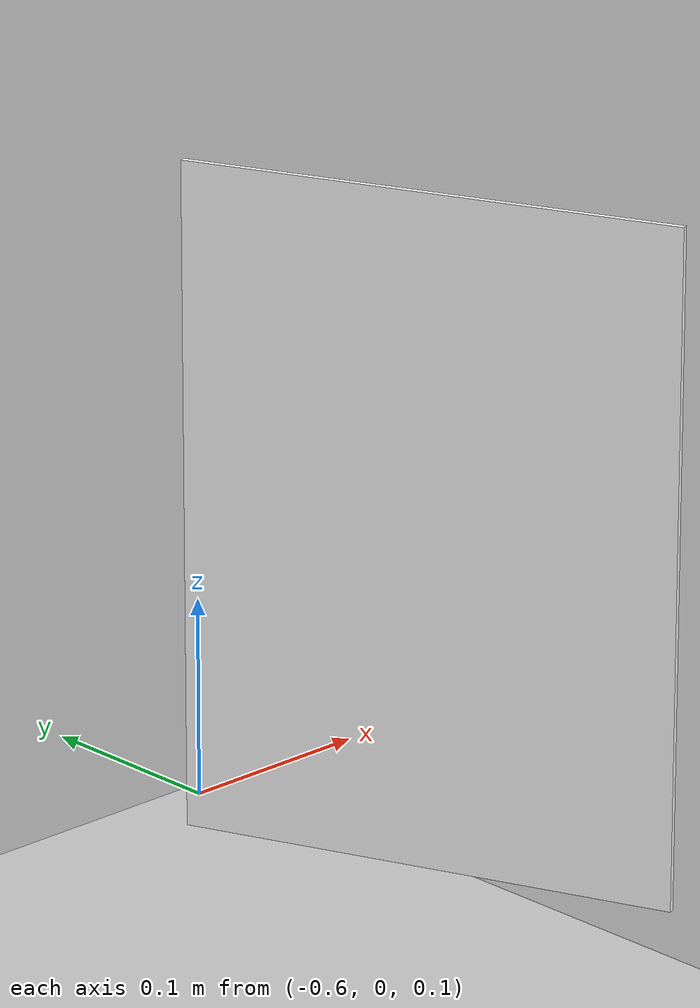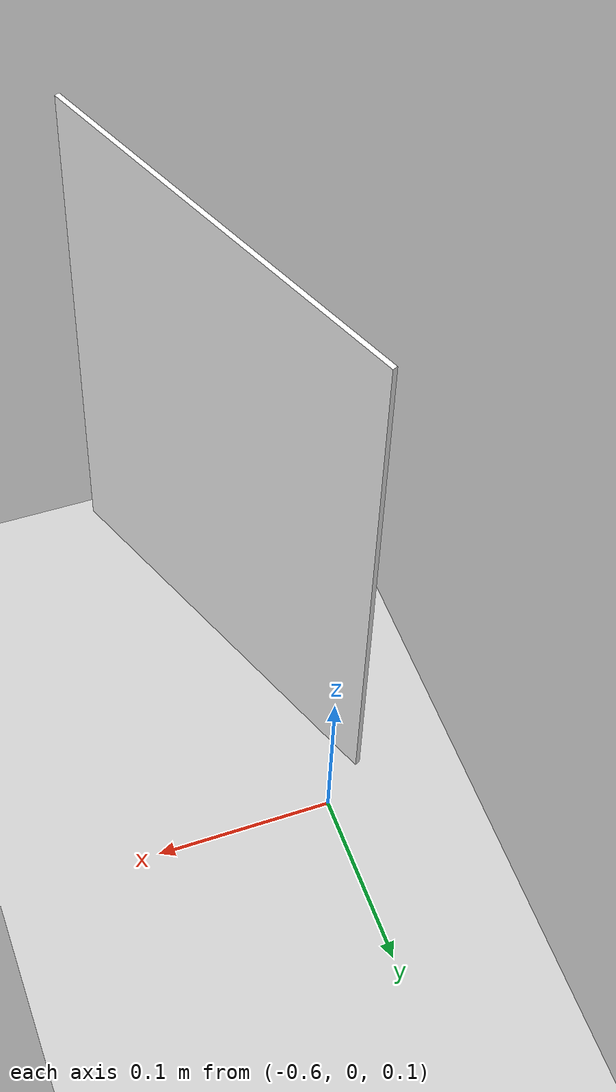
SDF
<?xml version="1.0" ?>
<sdf version="1.9">
  <world name="robot_arm_test_world">

    <physics name="2ms" type="ignored">
      <max_step_size>0.002</max_step_size>
      <real_time_factor>0</real_time_factor>
      <real_time_update_rate>0</real_time_update_rate>
    </physics>

    <plugin filename="gz-sim-physics-system" name="gz::sim::systems::Physics"/>
    <plugin filename="gz-sim-user-commands-system" name="gz::sim::systems::UserCommands"/>
    <plugin filename="gz-sim-scene-broadcaster-system" name="gz::sim::systems::SceneBroadcaster"/>
    <plugin filename="gz-sim-sensors-system" name="gz::sim::systems::Sensors">
      <render_engine>ogre2</render_engine>
    </plugin>

    <scene>
      <ambient>0.7 0.7 0.7 1</ambient>
      <background>0.5 0.5 0.5</background>
    </scene>

    <light type="directional" name="sun">
      <cast_shadows>true</cast_shadows>
      <pose>0 0 10 0 0 0</pose>
      <diffuse>0.8 0.8 0.8 1</diffuse>
    </light>

    <model name="ground_plane">
      <static>true</static>
      <link name="link">
        <collision name="collision">
          <geometry><plane><normal>0 0 1</normal></plane></geometry>
        </collision>
        <visual name="visual">
          <geometry><plane><normal>0 0 1</normal><size>20 20</size></plane></geometry>
          <material><ambient>0.8 0.8 0.8 1</ambient></material>
        </visual>
      </link>
    </model>

    <!-- Sabit gözlem kamerası: kol ~30cm, origin'e bakar -->
    <model name="observer_camera">
      <static>true</static>
      <pose>0.45 -0.45 0.30 0 0.30 2.36</pose>
      <link name="camera_link">
        <sensor name="observer_cam" type="camera">
          <always_on>1</always_on>
          <update_rate>10</update_rate>
          <topic>robot_arm_cameraera</topic>
          <camera>
            <horizontal_fov>1.047</horizontal_fov>
            <image><width>960</width><height>720</height></image>
            <clip><near>0.05</near><far>10</far></clip>
          </camera>
        </sensor>
      </link>
    </model>

    <include>
      <uri>model://checkerboard_6x9_27p5mm</uri>
      <name>hand_eye_board</name>
      <pose>-0.5804 -0.1355 0.2632 0 1.5708 0.376</pose>
    </include>

  </world>
</sdf>

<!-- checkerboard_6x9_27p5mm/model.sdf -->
<!-- ÜRETİLMİŞ DOSYA — scripts/make_sim_checkerboard.py. Elle düzenleme. -->
<sdf version="1.9">
  <model name="checkerboard_6x9_27p5mm">
    <static>true</static>
    <link name="link">
      <visual name="visual">
        <geometry>
          <box>
            <size>0.330000 0.247500 0.003000</size>
          </box>
        </geometry>
        <material>
          <ambient>1 1 1 1</ambient>
          <diffuse>1 1 1 1</diffuse>
          <specular>0 0 0 1</specular>
          <pbr>
            <metal>
              <metalness>0.0</metalness>
              <roughness>1.0</roughness>
              <albedo_map>materials/textures/checkerboard_6x9_27p5mm.png</albedo_map>
            </metal>
          </pbr>
        </material>
      </visual>
    </link>
  </model>
</sdf>
